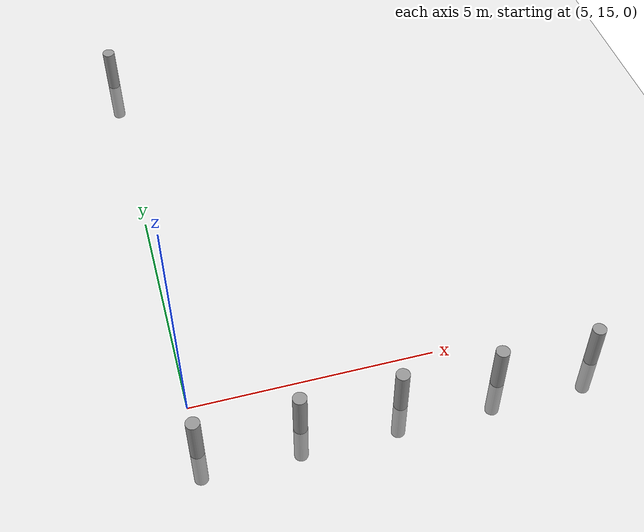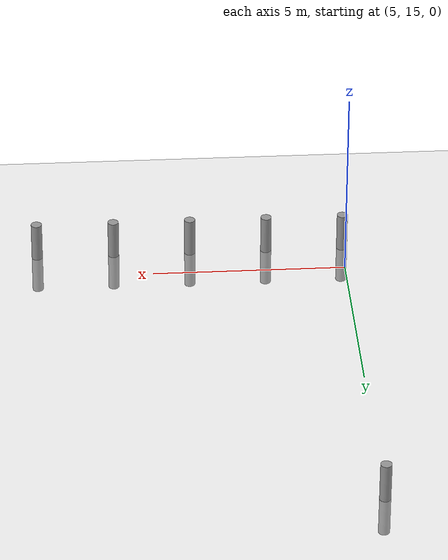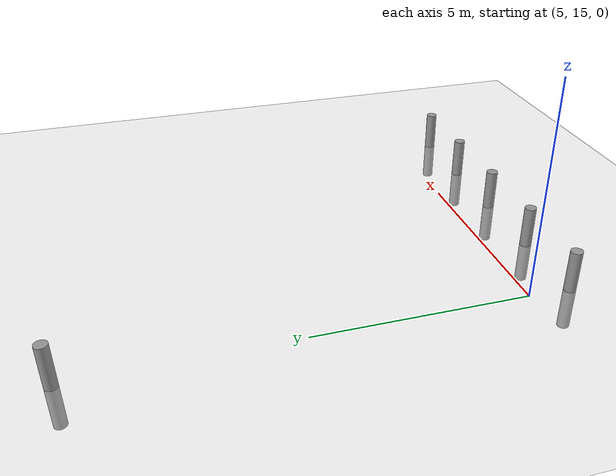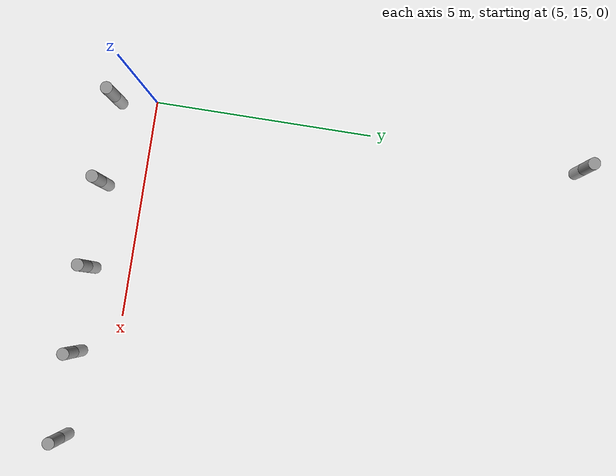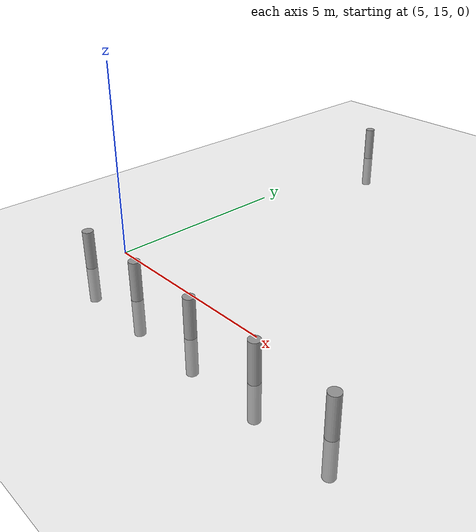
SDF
<sdf version="1.6">
 <world name="default">
  <model name="ground_plane">
   <static>1</static>
   <link name="link">
    <collision name="collision">
     <geometry><plane><normal>0 0 1</normal><size>100 100</size></plane></geometry>
     <surface><friction><ode><mu>100</mu><mu2>50</mu2></ode></friction></surface>
    </collision>
    <visual name="visual">
     <cast_shadows>0</cast_shadows>
     <geometry><plane><normal>0 0 1</normal><size>100 100</size></plane></geometry>
     <material>
      <script><uri>file://media/materials/scripts/gazebo.material</uri><name>Gazebo/Grey</name></script>
     </material>
    </visual>
   </link>
  </model>
  <model name="my_cylinder014_clone_122">
   <pose>5 14 0 0 -0 0</pose>
   <link name="my_cylinder014::link">
    <inertial>
     <mass>1</mass>
     <inertia><ixx>0.145833</ixx><ixy>0</ixy><ixz>0</ixz><iyy>0.145833</iyy><iyz>0</iyz><izz>0.125</izz></inertia>
    </inertial>
    <visual name="visual">
     <geometry><cylinder><radius>0.14</radius><length>2</length></cylinder></geometry>
     <material>
      <script><name>Gazebo/Grey</name><uri>file://media/materials/scripts/gazebo.material</uri></script>
      <ambient>0.3 0.3 0.3 1</ambient>
      <diffuse>0.7 0.7 0.7 1</diffuse>
      <specular>1 0.01 0.01 1</specular>
      <emissive>0 0 0 1</emissive>
      <shader type="vertex"><normal_map>__default__</normal_map></shader>
     </material>
    </visual>
    <collision name="collision">
     <geometry><cylinder><radius>0.14</radius><length>2</length></cylinder></geometry>
     <surface>
      <friction>
       <ode><mu>1</mu><mu2>1</mu2><fdir1>0 0 0</fdir1><slip1>0</slip1><slip2>0</slip2></ode>
       <torsional>
        <coefficient>1</coefficient>
        <patch_radius>0</patch_radius>
        <surface_radius>0</surface_radius>
        <use_patch_radius>1</use_patch_radius>
        <ode><slip>0</slip></ode>
       </torsional>
      </friction>
      <bounce><restitution_coefficient>0</restitution_coefficient><threshold>1e+06</threshold></bounce>
      <contact>
       <collide_without_contact>0</collide_without_contact>
       <collide_without_contact_bitmask>1</collide_without_contact_bitmask>
       <collide_bitmask>1</collide_bitmask>
       <ode>
        <soft_cfm>0</soft_cfm>
        <soft_erp>0.2</soft_erp>
        <kp>1e+13</kp>
        <kd>1</kd>
        <max_vel>0.01</max_vel>
        <min_depth>0</min_depth>
       </ode>
       <bullet>
        <split_impulse>1</split_impulse>
        <split_impulse_penetration_threshold>-0.01</split_impulse_penetration_threshold>
        <soft_cfm>0</soft_cfm>
        <soft_erp>0.2</soft_erp>
        <kp>1e+13</kp>
        <kd>1</kd>
       </bullet>
      </contact>
     </surface>
    </collision>
   </link>
   <static>1</static>
  </model>
  <model name="my_cylinder014_clone_123">
   <pose>7 14 0 0 -0 0</pose>
   <link name="my_cylinder014::link">
    <inertial>
     <mass>1</mass>
     <inertia><ixx>0.145833</ixx><ixy>0</ixy><ixz>0</ixz><iyy>0.145833</iyy><iyz>0</iyz><izz>0.125</izz></inertia>
    </inertial>
    <visual name="visual">
     <geometry><cylinder><radius>0.14</radius><length>2</length></cylinder></geometry>
     <material>
      <script><name>Gazebo/Grey</name><uri>file://media/materials/scripts/gazebo.material</uri></script>
      <ambient>0.3 0.3 0.3 1</ambient>
      <diffuse>0.7 0.7 0.7 1</diffuse>
      <specular>1 0.01 0.01 1</specular>
      <emissive>0 0 0 1</emissive>
      <shader type="vertex"><normal_map>__default__</normal_map></shader>
     </material>
    </visual>
    <collision name="collision">
     <geometry><cylinder><radius>0.14</radius><length>2</length></cylinder></geometry>
     <surface>
      <friction>
       <ode><mu>1</mu><mu2>1</mu2><fdir1>0 0 0</fdir1><slip1>0</slip1><slip2>0</slip2></ode>
       <torsional>
        <coefficient>1</coefficient>
        <patch_radius>0</patch_radius>
        <surface_radius>0</surface_radius>
        <use_patch_radius>1</use_patch_radius>
        <ode><slip>0</slip></ode>
       </torsional>
      </friction>
      <bounce><restitution_coefficient>0</restitution_coefficient><threshold>1e+06</threshold></bounce>
      <contact>
       <collide_without_contact>0</collide_without_contact>
       <collide_without_contact_bitmask>1</collide_without_contact_bitmask>
       <collide_bitmask>1</collide_bitmask>
       <ode>
        <soft_cfm>0</soft_cfm>
        <soft_erp>0.2</soft_erp>
        <kp>1e+13</kp>
        <kd>1</kd>
        <max_vel>0.01</max_vel>
        <min_depth>0</min_depth>
       </ode>
       <bullet>
        <split_impulse>1</split_impulse>
        <split_impulse_penetration_threshold>-0.01</split_impulse_penetration_threshold>
        <soft_cfm>0</soft_cfm>
        <soft_erp>0.2</soft_erp>
        <kp>1e+13</kp>
        <kd>1</kd>
       </bullet>
      </contact>
     </surface>
    </collision>
   </link>
   <static>1</static>
  </model>
  <model name="my_cylinder014_clone_124">
   <pose>9 14 0 0 -0 0</pose>
   <link name="my_cylinder014::link">
    <inertial>
     <mass>1</mass>
     <inertia><ixx>0.145833</ixx><ixy>0</ixy><ixz>0</ixz><iyy>0.145833</iyy><iyz>0</iyz><izz>0.125</izz></inertia>
    </inertial>
    <visual name="visual">
     <geometry><cylinder><radius>0.14</radius><length>2</length></cylinder></geometry>
     <material>
      <script><name>Gazebo/Grey</name><uri>file://media/materials/scripts/gazebo.material</uri></script>
      <ambient>0.3 0.3 0.3 1</ambient>
      <diffuse>0.7 0.7 0.7 1</diffuse>
      <specular>1 0.01 0.01 1</specular>
      <emissive>0 0 0 1</emissive>
      <shader type="vertex"><normal_map>__default__</normal_map></shader>
     </material>
    </visual>
    <collision name="collision">
     <geometry><cylinder><radius>0.14</radius><length>2</length></cylinder></geometry>
     <surface>
      <friction>
       <ode><mu>1</mu><mu2>1</mu2><fdir1>0 0 0</fdir1><slip1>0</slip1><slip2>0</slip2></ode>
       <torsional>
        <coefficient>1</coefficient>
        <patch_radius>0</patch_radius>
        <surface_radius>0</surface_radius>
        <use_patch_radius>1</use_patch_radius>
        <ode><slip>0</slip></ode>
       </torsional>
      </friction>
      <bounce><restitution_coefficient>0</restitution_coefficient><threshold>1e+06</threshold></bounce>
      <contact>
       <collide_without_contact>0</collide_without_contact>
       <collide_without_contact_bitmask>1</collide_without_contact_bitmask>
       <collide_bitmask>1</collide_bitmask>
       <ode>
        <soft_cfm>0</soft_cfm>
        <soft_erp>0.2</soft_erp>
        <kp>1e+13</kp>
        <kd>1</kd>
        <max_vel>0.01</max_vel>
        <min_depth>0</min_depth>
       </ode>
       <bullet>
        <split_impulse>1</split_impulse>
        <split_impulse_penetration_threshold>-0.01</split_impulse_penetration_threshold>
        <soft_cfm>0</soft_cfm>
        <soft_erp>0.2</soft_erp>
        <kp>1e+13</kp>
        <kd>1</kd>
       </bullet>
      </contact>
     </surface>
    </collision>
   </link>
   <static>1</static>
  </model>
  <model name="my_cylinder014_clone_125">
   <pose>11 14 0 0 -0 0</pose>
   <link name="my_cylinder014::link">
    <inertial>
     <mass>1</mass>
     <inertia><ixx>0.145833</ixx><ixy>0</ixy><ixz>0</ixz><iyy>0.145833</iyy><iyz>0</iyz><izz>0.125</izz></inertia>
    </inertial>
    <visual name="visual">
     <geometry><cylinder><radius>0.14</radius><length>2</length></cylinder></geometry>
     <material>
      <script><name>Gazebo/Grey</name><uri>file://media/materials/scripts/gazebo.material</uri></script>
      <ambient>0.3 0.3 0.3 1</ambient>
      <diffuse>0.7 0.7 0.7 1</diffuse>
      <specular>1 0.01 0.01 1</specular>
      <emissive>0 0 0 1</emissive>
      <shader type="vertex"><normal_map>__default__</normal_map></shader>
     </material>
    </visual>
    <collision name="collision">
     <geometry><cylinder><radius>0.14</radius><length>2</length></cylinder></geometry>
     <surface>
      <friction>
       <ode><mu>1</mu><mu2>1</mu2><fdir1>0 0 0</fdir1><slip1>0</slip1><slip2>0</slip2></ode>
       <torsional>
        <coefficient>1</coefficient>
        <patch_radius>0</patch_radius>
        <surface_radius>0</surface_radius>
        <use_patch_radius>1</use_patch_radius>
        <ode><slip>0</slip></ode>
       </torsional>
      </friction>
      <bounce><restitution_coefficient>0</restitution_coefficient><threshold>1e+06</threshold></bounce>
      <contact>
       <collide_without_contact>0</collide_without_contact>
       <collide_without_contact_bitmask>1</collide_without_contact_bitmask>
       <collide_bitmask>1</collide_bitmask>
       <ode>
        <soft_cfm>0</soft_cfm>
        <soft_erp>0.2</soft_erp>
        <kp>1e+13</kp>
        <kd>1</kd>
        <max_vel>0.01</max_vel>
        <min_depth>0</min_depth>
       </ode>
       <bullet>
        <split_impulse>1</split_impulse>
        <split_impulse_penetration_threshold>-0.01</split_impulse_penetration_threshold>
        <soft_cfm>0</soft_cfm>
        <soft_erp>0.2</soft_erp>
        <kp>1e+13</kp>
        <kd>1</kd>
       </bullet>
      </contact>
     </surface>
    </collision>
   </link>
   <static>1</static>
  </model>
  <model name="my_cylinder014_clone_126">
   <pose>13 14 0 0 -0 0</pose>
   <link name="my_cylinder014::link">
    <inertial>
     <mass>1</mass>
     <inertia><ixx>0.145833</ixx><ixy>0</ixy><ixz>0</ixz><iyy>0.145833</iyy><iyz>0</iyz><izz>0.125</izz></inertia>
    </inertial>
    <visual name="visual">
     <geometry><cylinder><radius>0.14</radius><length>2</length></cylinder></geometry>
     <material>
      <script><name>Gazebo/Grey</name><uri>file://media/materials/scripts/gazebo.material</uri></script>
      <ambient>0.3 0.3 0.3 1</ambient>
      <diffuse>0.7 0.7 0.7 1</diffuse>
      <specular>1 0.01 0.01 1</specular>
      <emissive>0 0 0 1</emissive>
      <shader type="vertex"><normal_map>__default__</normal_map></shader>
     </material>
    </visual>
    <collision name="collision">
     <geometry><cylinder><radius>0.14</radius><length>2</length></cylinder></geometry>
     <surface>
      <friction>
       <ode><mu>1</mu><mu2>1</mu2><fdir1>0 0 0</fdir1><slip1>0</slip1><slip2>0</slip2></ode>
       <torsional>
        <coefficient>1</coefficient>
        <patch_radius>0</patch_radius>
        <surface_radius>0</surface_radius>
        <use_patch_radius>1</use_patch_radius>
        <ode><slip>0</slip></ode>
       </torsional>
      </friction>
      <bounce><restitution_coefficient>0</restitution_coefficient><threshold>1e+06</threshold></bounce>
      <contact>
       <collide_without_contact>0</collide_without_contact>
       <collide_without_contact_bitmask>1</collide_without_contact_bitmask>
       <collide_bitmask>1</collide_bitmask>
       <ode>
        <soft_cfm>0</soft_cfm>
        <soft_erp>0.2</soft_erp>
        <kp>1e+13</kp>
        <kd>1</kd>
        <max_vel>0.01</max_vel>
        <min_depth>0</min_depth>
       </ode>
       <bullet>
        <split_impulse>1</split_impulse>
        <split_impulse_penetration_threshold>-0.01</split_impulse_penetration_threshold>
        <soft_cfm>0</soft_cfm>
        <soft_erp>0.2</soft_erp>
        <kp>1e+13</kp>
        <kd>1</kd>
       </bullet>
      </contact>
     </surface>
    </collision>
   </link>
   <static>1</static>
  </model>
  <model name="my_cylinder014_clone_26_0">
   <pose>5 25 0 0 -0 0</pose>
   <link name="my_cylinder014::link">
    <inertial>
     <mass>1</mass>
     <inertia><ixx>0.145833</ixx><ixy>0</ixy><ixz>0</ixz><iyy>0.145833</iyy><iyz>0</iyz><izz>0.125</izz></inertia>
    </inertial>
    <visual name="visual">
     <geometry><cylinder><radius>0.14</radius><length>2</length></cylinder></geometry>
     <material>
      <script><name>Gazebo/Grey</name><uri>file://media/materials/scripts/gazebo.material</uri></script>
      <ambient>0.3 0.3 0.3 1</ambient>
      <diffuse>0.7 0.7 0.7 1</diffuse>
      <specular>1 0.01 0.01 1</specular>
      <emissive>0 0 0 1</emissive>
      <shader type="vertex"><normal_map>__default__</normal_map></shader>
     </material>
    </visual>
    <collision name="collision">
     <geometry><cylinder><radius>0.14</radius><length>2</length></cylinder></geometry>
     <surface>
      <friction>
       <ode><mu>1</mu><mu2>1</mu2><fdir1>0 0 0</fdir1><slip1>0</slip1><slip2>0</slip2></ode>
       <torsional>
        <coefficient>1</coefficient>
        <patch_radius>0</patch_radius>
        <surface_radius>0</surface_radius>
        <use_patch_radius>1</use_patch_radius>
        <ode><slip>0</slip></ode>
       </torsional>
      </friction>
      <bounce><restitution_coefficient>0</restitution_coefficient><threshold>1e+06</threshold></bounce>
      <contact>
       <collide_without_contact>0</collide_without_contact>
       <collide_without_contact_bitmask>1</collide_without_contact_bitmask>
       <collide_bitmask>1</collide_bitmask>
       <ode>
        <soft_cfm>0</soft_cfm>
        <soft_erp>0.2</soft_erp>
        <kp>1e+13</kp>
        <kd>1</kd>
        <max_vel>0.01</max_vel>
        <min_depth>0</min_depth>
       </ode>
       <bullet>
        <split_impulse>1</split_impulse>
        <split_impulse_penetration_threshold>-0.01</split_impulse_penetration_threshold>
        <soft_cfm>0</soft_cfm>
        <soft_erp>0.2</soft_erp>
        <kp>1e+13</kp>
        <kd>1</kd>
       </bullet>
      </contact>
     </surface>
    </collision>
   </link>
   <static>1</static>
  </model>
 </world>
</sdf>
